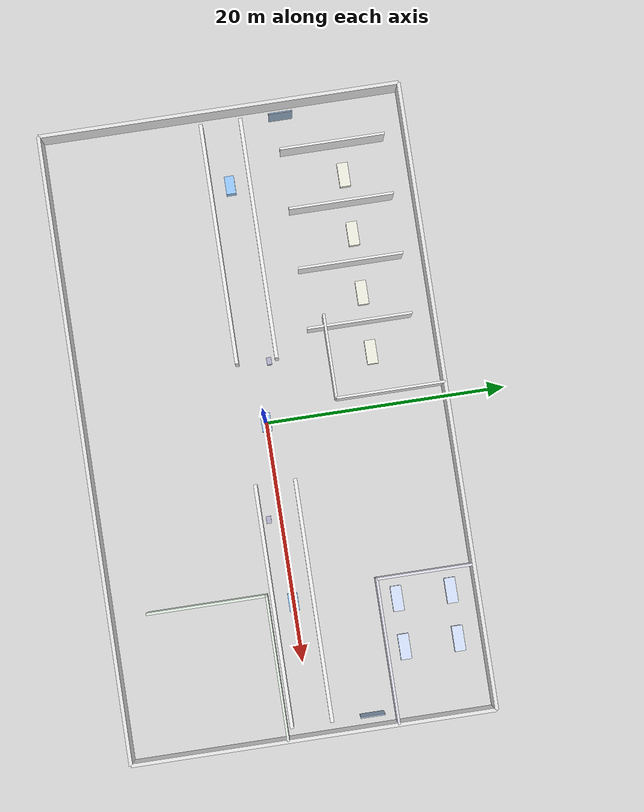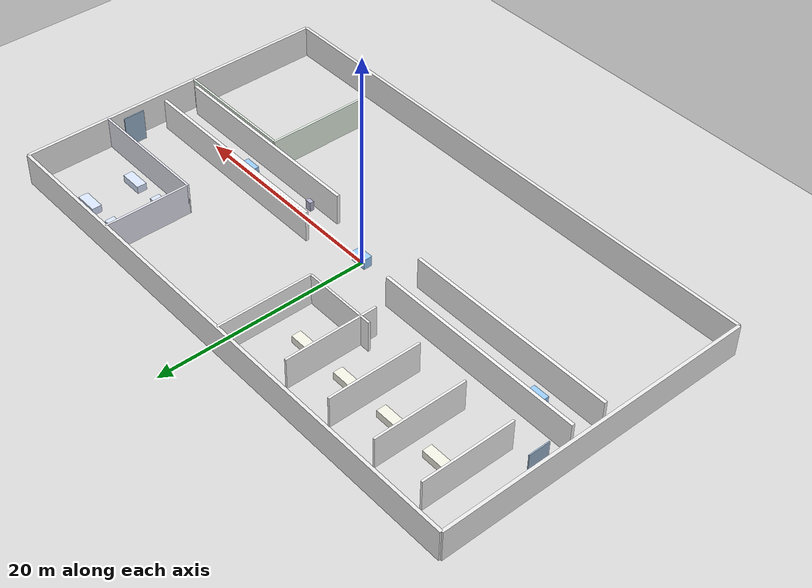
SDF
<sdf version="1.9">
 <world name="hospital_world">
  <physics name="1ms" type="ignored">
   <max_step_size>0.001</max_step_size>
   <real_time_factor>1.0</real_time_factor>
   <real_time_update_rate>1000</real_time_update_rate>
  </physics>
  <plugin filename="gz-sim-physics-system" name="gz::sim::systems::Physics"/>
  <plugin filename="gz-sim-user-commands-system" name="gz::sim::systems::UserCommands"/>
  <plugin filename="gz-sim-scene-broadcaster-system" name="gz::sim::systems::SceneBroadcaster"/>
  <plugin filename="gz-sim-sensors-system" name="gz::sim::systems::Sensors">
   <render_engine>ogre2</render_engine>
  </plugin>
  <plugin filename="gz-sim-imu-system" name="gz::sim::systems::Imu"/>
  <plugin filename="gz-sim-navsat-system" name="gz::sim::systems::NavSat"/>
  <plugin filename="gz-sim-contact-system" name="gz::sim::systems::Contact"/>
  <scene>
   <ambient>0.8 0.8 0.8 1.0</ambient>
   <background>0.85 0.87 0.91 1.0</background>
   <shadows>true</shadows>
   <sky><clouds><speed>12</speed></clouds></sky>
  </scene>
  <light type="directional" name="sun">
   <cast_shadows>false</cast_shadows>
   <pose>0 0 20 0 0 0</pose>
   <diffuse>0.9 0.9 0.9 1</diffuse>
   <specular>0.3 0.3 0.3 1</specular>
   <direction>-0.5 0.1 -0.9</direction>
  </light>
  <light type="point" name="corridor_light_1">
   <pose>-15 0 3.5 0 0 0</pose>
   <diffuse>1.0 1.0 0.95 1</diffuse>
   <specular>0.2 0.2 0.2 1</specular>
   <attenuation>
    <range>8</range>
    <linear>0.1</linear>
    <constant>0.8</constant>
    <quadratic>0.01</quadratic>
   </attenuation>
  </light>
  <light type="point" name="corridor_light_2">
   <pose>0 0 3.5 0 0 0</pose>
   <diffuse>1.0 1.0 0.95 1</diffuse>
   <specular>0.2 0.2 0.2 1</specular>
   <attenuation>
    <range>8</range>
    <linear>0.1</linear>
    <constant>0.8</constant>
    <quadratic>0.01</quadratic>
   </attenuation>
  </light>
  <light type="point" name="corridor_light_3">
   <pose>15 0 3.5 0 0 0</pose>
   <diffuse>1.0 1.0 0.95 1</diffuse>
   <specular>0.2 0.2 0.2 1</specular>
   <attenuation>
    <range>8</range>
    <linear>0.1</linear>
    <constant>0.8</constant>
    <quadratic>0.01</quadratic>
   </attenuation>
  </light>
  <model name="ground_plane">
   <static>true</static>
   <link name="link">
    <collision name="collision">
     <geometry><plane><normal>0 0 1</normal><size>100 100</size></plane></geometry>
     <surface><friction><ode><mu>1.0</mu><mu2>1.0</mu2></ode></friction></surface>
    </collision>
    <visual name="visual">
     <geometry><plane><normal>0 0 1</normal><size>100 100</size></plane></geometry>
     <material><ambient>0.85 0.85 0.85 1</ambient><diffuse>0.85 0.85 0.85 1</diffuse></material>
    </visual>
   </link>
  </model>
  <model name="wall_north_outer">
   <static>true</static>
   <pose>0 15 1.5 0 0 0</pose>
   <link name="link">
    <collision name="collision"><geometry><box><size>52 0.3 3.0</size></box></geometry></collision>
    <visual name="visual">
     <geometry><box><size>52 0.3 3.0</size></box></geometry>
     <material><ambient>0.92 0.92 0.92 1</ambient><diffuse>0.92 0.92 0.92 1</diffuse></material>
    </visual>
   </link>
  </model>
  <model name="wall_south_outer">
   <static>true</static>
   <pose>0 -15 1.5 0 0 0</pose>
   <link name="link">
    <collision name="collision"><geometry><box><size>52 0.3 3.0</size></box></geometry></collision>
    <visual name="visual">
     <geometry><box><size>52 0.3 3.0</size></box></geometry>
     <material><ambient>0.92 0.92 0.92 1</ambient><diffuse>0.92 0.92 0.92 1</diffuse></material>
    </visual>
   </link>
  </model>
  <model name="wall_east_outer">
   <static>true</static>
   <pose>26 0 1.5 0 0 0</pose>
   <link name="link">
    <collision name="collision"><geometry><box><size>0.3 30 3.0</size></box></geometry></collision>
    <visual name="visual">
     <geometry><box><size>0.3 30 3.0</size></box></geometry>
     <material><ambient>0.92 0.92 0.92 1</ambient><diffuse>0.92 0.92 0.92 1</diffuse></material>
    </visual>
   </link>
  </model>
  <model name="wall_west_outer">
   <static>true</static>
   <pose>-26 0 1.5 0 0 0</pose>
   <link name="link">
    <collision name="collision"><geometry><box><size>0.3 30 3.0</size></box></geometry></collision>
    <visual name="visual">
     <geometry><box><size>0.3 30 3.0</size></box></geometry>
     <material><ambient>0.92 0.92 0.92 1</ambient><diffuse>0.92 0.92 0.92 1</diffuse></material>
    </visual>
   </link>
  </model>
  <model name="wall_corridor_north_w">
   <static>true</static>
   <pose>-15 1.65 1.5 0 0 0</pose>
   <link name="link">
    <collision name="collision"><geometry><box><size>20 0.3 3.0</size></box></geometry></collision>
    <visual name="visual">
     <geometry><box><size>20 0.3 3.0</size></box></geometry>
     <material><ambient>0.95 0.95 0.95 1</ambient><diffuse>0.95 0.95 0.95 1</diffuse></material>
    </visual>
   </link>
  </model>
  <model name="wall_corridor_north_e">
   <static>true</static>
   <pose>15 1.65 1.5 0 0 0</pose>
   <link name="link">
    <collision name="collision"><geometry><box><size>20 0.3 3.0</size></box></geometry></collision>
    <visual name="visual">
     <geometry><box><size>20 0.3 3.0</size></box></geometry>
     <material><ambient>0.95 0.95 0.95 1</ambient><diffuse>0.95 0.95 0.95 1</diffuse></material>
    </visual>
   </link>
  </model>
  <model name="wall_corridor_south_w">
   <static>true</static>
   <pose>-15 -1.65 1.5 0 0 0</pose>
   <link name="link">
    <collision name="collision"><geometry><box><size>20 0.3 3.0</size></box></geometry></collision>
    <visual name="visual">
     <geometry><box><size>20 0.3 3.0</size></box></geometry>
     <material><ambient>0.95 0.95 0.95 1</ambient><diffuse>0.95 0.95 0.95 1</diffuse></material>
    </visual>
   </link>
  </model>
  <model name="wall_corridor_south_e">
   <static>true</static>
   <pose>15 -1.65 1.5 0 0 0</pose>
   <link name="link">
    <collision name="collision"><geometry><box><size>20 0.3 3.0</size></box></geometry></collision>
    <visual name="visual">
     <geometry><box><size>20 0.3 3.0</size></box></geometry>
     <material><ambient>0.95 0.95 0.95 1</ambient><diffuse>0.95 0.95 0.95 1</diffuse></material>
    </visual>
   </link>
  </model>
  <model name="pr_n1_wall_e">
   <static>true</static>
   <pose>-22 8.85 1.5 0 0 0</pose>
   <link name="link">
    <collision name="c"><geometry><box><size>0.2 8.7 3.0</size></box></geometry></collision>
    <visual name="v">
     <geometry><box><size>0.2 8.7 3.0</size></box></geometry>
     <material><ambient>0.95 0.95 0.95 1</ambient><diffuse>0.95 0.95 0.95 1</diffuse></material>
    </visual>
   </link>
  </model>
  <model name="pr_n2_wall_e">
   <static>true</static>
   <pose>-17 8.85 1.5 0 0 0</pose>
   <link name="link">
    <collision name="c"><geometry><box><size>0.2 8.7 3.0</size></box></geometry></collision>
    <visual name="v">
     <geometry><box><size>0.2 8.7 3.0</size></box></geometry>
     <material><ambient>0.95 0.95 0.95 1</ambient><diffuse>0.95 0.95 0.95 1</diffuse></material>
    </visual>
   </link>
  </model>
  <model name="pr_n3_wall_e">
   <static>true</static>
   <pose>-12 8.85 1.5 0 0 0</pose>
   <link name="link">
    <collision name="c"><geometry><box><size>0.2 8.7 3.0</size></box></geometry></collision>
    <visual name="v">
     <geometry><box><size>0.2 8.7 3.0</size></box></geometry>
     <material><ambient>0.95 0.95 0.95 1</ambient><diffuse>0.95 0.95 0.95 1</diffuse></material>
    </visual>
   </link>
  </model>
  <model name="pr_n4_wall_e">
   <static>true</static>
   <pose>-7 8.85 1.5 0 0 0</pose>
   <link name="link">
    <collision name="c"><geometry><box><size>0.2 8.7 3.0</size></box></geometry></collision>
    <visual name="v">
     <geometry><box><size>0.2 8.7 3.0</size></box></geometry>
     <material><ambient>0.95 0.95 0.95 1</ambient><diffuse>0.95 0.95 0.95 1</diffuse></material>
    </visual>
   </link>
  </model>
  <model name="icu_wall_south">
   <static>true</static>
   <pose>20 7.0 1.5 0 0 0</pose>
   <link name="link">
    <collision name="collision"><geometry><box><size>12 0.2 3.0</size></box></geometry></collision>
    <visual name="visual">
     <geometry><box><size>12 0.2 3.0</size></box></geometry>
     <material><ambient>0.9 0.9 0.95 1</ambient><diffuse>0.9 0.9 0.95 1</diffuse></material>
    </visual>
   </link>
  </model>
  <model name="icu_wall_west">
   <static>true</static>
   <pose>14.1 11.0 1.5 0 0 0</pose>
   <link name="link">
    <collision name="collision"><geometry><box><size>0.2 8.0 3.0</size></box></geometry></collision>
    <visual name="visual">
     <geometry><box><size>0.2 8.0 3.0</size></box></geometry>
     <material><ambient>0.9 0.9 0.95 1</ambient><diffuse>0.9 0.9 0.95 1</diffuse></material>
    </visual>
   </link>
  </model>
  <model name="pharmacy_wall_w">
   <static>true</static>
   <pose>14.1 -7.0 1.5 0 0 0</pose>
   <link name="link">
    <collision name="collision"><geometry><box><size>0.2 10.0 3.0</size></box></geometry></collision>
    <visual name="visual">
     <geometry><box><size>0.2 10.0 3.0</size></box></geometry>
     <material><ambient>0.9 0.95 0.9 1</ambient><diffuse>0.9 0.95 0.9 1</diffuse></material>
    </visual>
   </link>
  </model>
  <model name="pharmacy_wall_n">
   <static>true</static>
   <pose>20 -2.1 1.5 0 0 0</pose>
   <link name="link">
    <collision name="collision"><geometry><box><size>12 0.2 3.0</size></box></geometry></collision>
    <visual name="visual">
     <geometry><box><size>12 0.2 3.0</size></box></geometry>
     <material><ambient>0.9 0.95 0.9 1</ambient><diffuse>0.9 0.95 0.9 1</diffuse></material>
    </visual>
   </link>
  </model>
  <model name="or1_wall_e">
   <static>true</static>
   <pose>-1.0 10.5 1.5 0 0 0</pose>
   <link name="link">
    <collision name="collision"><geometry><box><size>0.2 9.0 3.0</size></box></geometry></collision>
    <visual name="visual">
     <geometry><box><size>0.2 9.0 3.0</size></box></geometry>
     <material><ambient>0.95 0.95 0.95 1</ambient><diffuse>0.95 0.95 0.95 1</diffuse></material>
    </visual>
   </link>
  </model>
  <model name="or1_wall_s">
   <static>true</static>
   <pose>-4.5 6.0 1.5 0 0 0</pose>
   <link name="link">
    <collision name="collision"><geometry><box><size>7.0 0.2 3.0</size></box></geometry></collision>
    <visual name="visual">
     <geometry><box><size>7.0 0.2 3.0</size></box></geometry>
     <material><ambient>0.95 0.95 0.95 1</ambient><diffuse>0.95 0.95 0.95 1</diffuse></material>
    </visual>
   </link>
  </model>
  <model name="nurse_station_1">
   <static>true</static>
   <pose>0 0 0.5 0 0 0</pose>
   <link name="link">
    <collision name="collision"><geometry><box><size>1.5 0.8 1.0</size></box></geometry></collision>
    <visual name="visual">
     <geometry><box><size>1.5 0.8 1.0</size></box></geometry>
     <material><ambient>0.6 0.8 1.0 1</ambient><diffuse>0.6 0.8 1.0 1</diffuse></material>
    </visual>
   </link>
  </model>
  <model name="nurse_station_2">
   <static>true</static>
   <pose>15 0 0.5 0 0 0</pose>
   <link name="link">
    <collision name="collision"><geometry><box><size>1.5 0.8 1.0</size></box></geometry></collision>
    <visual name="visual">
     <geometry><box><size>1.5 0.8 1.0</size></box></geometry>
     <material><ambient>0.6 0.8 1.0 1</ambient><diffuse>0.6 0.8 1.0 1</diffuse></material>
    </visual>
   </link>
  </model>
  <model name="nurse_station_3">
   <static>true</static>
   <pose>-20 0 0.5 0 0 0</pose>
   <link name="link">
    <collision name="collision"><geometry><box><size>1.5 0.8 1.0</size></box></geometry></collision>
    <visual name="visual">
     <geometry><box><size>1.5 0.8 1.0</size></box></geometry>
     <material><ambient>0.6 0.8 1.0 1</ambient><diffuse>0.6 0.8 1.0 1</diffuse></material>
    </visual>
   </link>
  </model>
  <model name="bed_1">
   <static>true</static>
   <pose>-19.5 9.5 0.35 0 0 0</pose>
   <link name="link">
    <collision name="collision"><geometry><box><size>2.0 0.9 0.7</size></box></geometry></collision>
    <visual name="visual">
     <geometry><box><size>2.0 0.9 0.7</size></box></geometry>
     <material><ambient>0.95 0.95 0.9 1</ambient><diffuse>0.95 0.95 0.9 1</diffuse></material>
    </visual>
   </link>
  </model>
  <model name="bed_2">
   <static>true</static>
   <pose>-14.5 9.5 0.35 0 0 0</pose>
   <link name="link">
    <collision name="collision"><geometry><box><size>2.0 0.9 0.7</size></box></geometry></collision>
    <visual name="visual">
     <geometry><box><size>2.0 0.9 0.7</size></box></geometry>
     <material><ambient>0.95 0.95 0.9 1</ambient><diffuse>0.95 0.95 0.9 1</diffuse></material>
    </visual>
   </link>
  </model>
  <model name="bed_3">
   <static>true</static>
   <pose>-9.5 9.5 0.35 0 0 0</pose>
   <link name="link">
    <collision name="collision"><geometry><box><size>2.0 0.9 0.7</size></box></geometry></collision>
    <visual name="visual">
     <geometry><box><size>2.0 0.9 0.7</size></box></geometry>
     <material><ambient>0.95 0.95 0.9 1</ambient><diffuse>0.95 0.95 0.9 1</diffuse></material>
    </visual>
   </link>
  </model>
  <model name="bed_4">
   <static>true</static>
   <pose>-4.5 9.5 0.35 0 0 0</pose>
   <link name="link">
    <collision name="collision"><geometry><box><size>2.0 0.9 0.7</size></box></geometry></collision>
    <visual name="visual">
     <geometry><box><size>2.0 0.9 0.7</size></box></geometry>
     <material><ambient>0.95 0.95 0.9 1</ambient><diffuse>0.95 0.95 0.9 1</diffuse></material>
    </visual>
   </link>
  </model>
  <model name="icu_bed_1">
   <static>true</static>
   <pose>16 8.5 0.35 0 0 0</pose>
   <link name="link">
    <collision name="collision"><geometry><box><size>2.1 0.9 0.7</size></box></geometry></collision>
    <visual name="visual">
     <geometry><box><size>2.1 0.9 0.7</size></box></geometry>
     <material><ambient>0.85 0.9 1.0 1</ambient><diffuse>0.85 0.9 1.0 1</diffuse></material>
    </visual>
   </link>
  </model>
  <model name="icu_bed_2">
   <static>true</static>
   <pose>20 8.5 0.35 0 0 0</pose>
   <link name="link">
    <collision name="collision"><geometry><box><size>2.1 0.9 0.7</size></box></geometry></collision>
    <visual name="visual">
     <geometry><box><size>2.1 0.9 0.7</size></box></geometry>
     <material><ambient>0.85 0.9 1.0 1</ambient><diffuse>0.85 0.9 1.0 1</diffuse></material>
    </visual>
   </link>
  </model>
  <model name="icu_bed_3">
   <static>true</static>
   <pose>16 13.0 0.35 0 0 0</pose>
   <link name="link">
    <collision name="collision"><geometry><box><size>2.1 0.9 0.7</size></box></geometry></collision>
    <visual name="visual">
     <geometry><box><size>2.1 0.9 0.7</size></box></geometry>
     <material><ambient>0.85 0.9 1.0 1</ambient><diffuse>0.85 0.9 1.0 1</diffuse></material>
    </visual>
   </link>
  </model>
  <model name="icu_bed_4">
   <static>true</static>
   <pose>20 13.0 0.35 0 0 0</pose>
   <link name="link">
    <collision name="collision"><geometry><box><size>2.1 0.9 0.7</size></box></geometry></collision>
    <visual name="visual">
     <geometry><box><size>2.1 0.9 0.7</size></box></geometry>
     <material><ambient>0.85 0.9 1.0 1</ambient><diffuse>0.85 0.9 1.0 1</diffuse></material>
    </visual>
   </link>
  </model>
  <model name="medical_cart_1">
   <static>false</static>
   <pose>-5 1.0 0.45 0 0 0</pose>
   <link name="link">
    <collision name="collision"><geometry><box><size>0.6 0.4 0.9</size></box></geometry></collision>
    <visual name="visual">
     <geometry><box><size>0.6 0.4 0.9</size></box></geometry>
     <material><ambient>0.7 0.7 0.8 1</ambient><diffuse>0.7 0.7 0.8 1</diffuse></material>
    </visual>
    <inertial>
     <mass>20</mass>
     <inertia><ixx>1.0</ixx><ixy>0</ixy><ixz>0</ixz><iyy>1.0</iyy><iyz>0</iyz><izz>0.5</izz></inertia>
    </inertial>
   </link>
  </model>
  <model name="medical_cart_2">
   <static>false</static>
   <pose>8 -1.0 0.45 0 0 0</pose>
   <link name="link">
    <collision name="collision"><geometry><box><size>0.6 0.4 0.9</size></box></geometry></collision>
    <visual name="visual">
     <geometry><box><size>0.6 0.4 0.9</size></box></geometry>
     <material><ambient>0.7 0.7 0.8 1</ambient><diffuse>0.7 0.7 0.8 1</diffuse></material>
    </visual>
    <inertial>
     <mass>20</mass>
     <inertia><ixx>1.0</ixx><ixy>0</ixy><ixz>0</ixz><iyy>1.0</iyy><iyz>0</iyz><izz>0.5</izz></inertia>
    </inertial>
   </link>
  </model>
  <model name="elevator_1_door">
   <static>true</static>
   <pose>-25 5 1.5 0 0 0</pose>
   <link name="link">
    <collision name="collision"><geometry><box><size>0.1 2.0 3.0</size></box></geometry></collision>
    <visual name="visual">
     <geometry><box><size>0.1 2.0 3.0</size></box></geometry>
     <material><ambient>0.6 0.7 0.8 1</ambient><diffuse>0.6 0.7 0.8 1</diffuse></material>
    </visual>
   </link>
  </model>
  <model name="elevator_2_door">
   <static>true</static>
   <pose>25 5 1.5 0 0 0</pose>
   <link name="link">
    <collision name="collision"><geometry><box><size>0.1 2.0 3.0</size></box></geometry></collision>
    <visual name="visual">
     <geometry><box><size>0.1 2.0 3.0</size></box></geometry>
     <material><ambient>0.6 0.7 0.8 1</ambient><diffuse>0.6 0.7 0.8 1</diffuse></material>
    </visual>
   </link>
  </model>
 </world>
</sdf>
